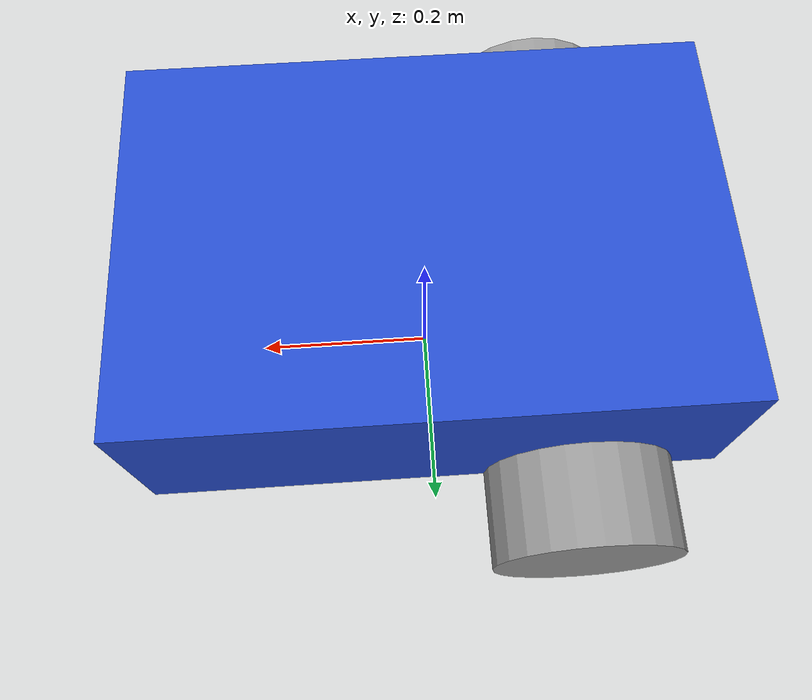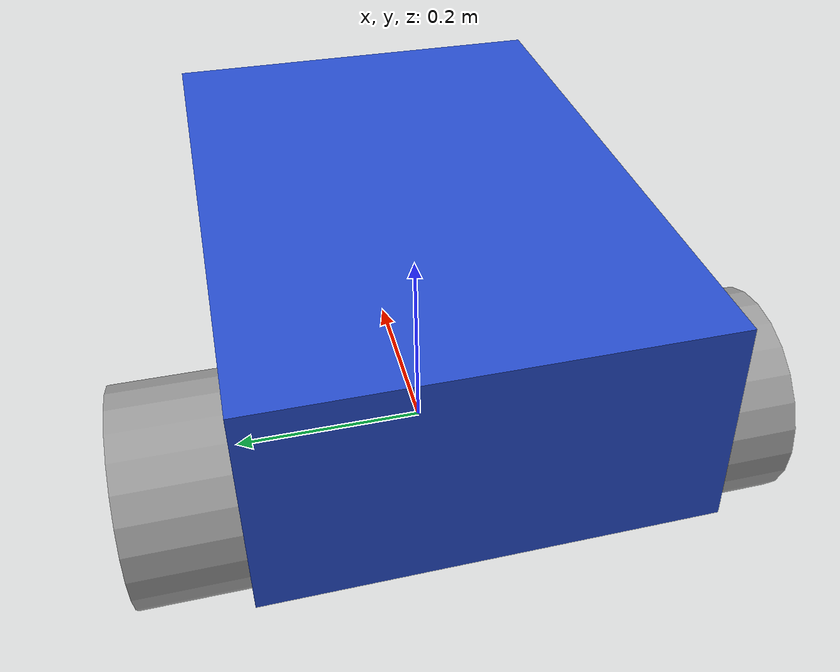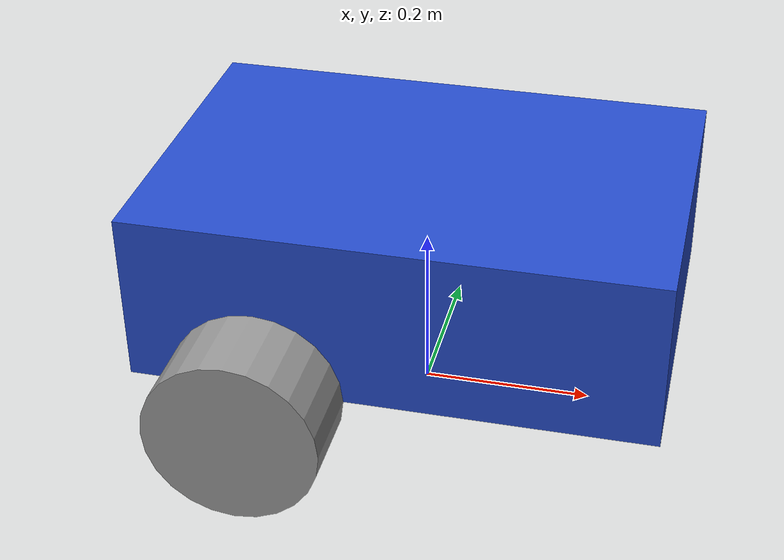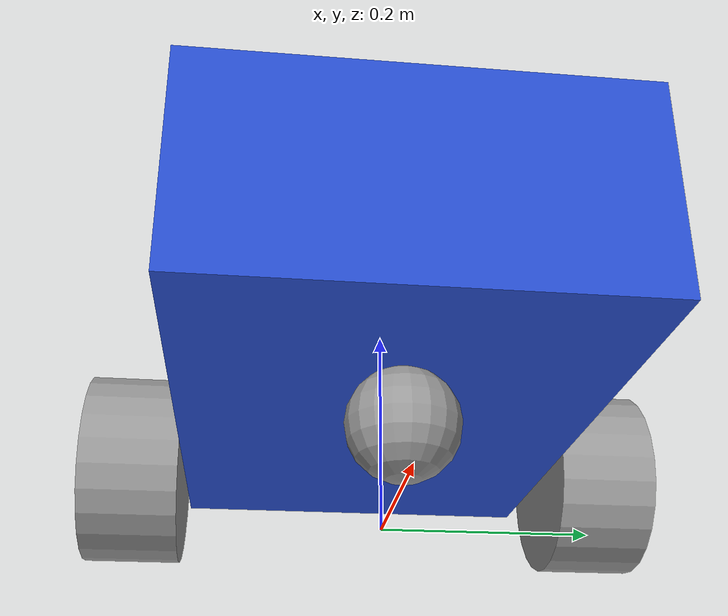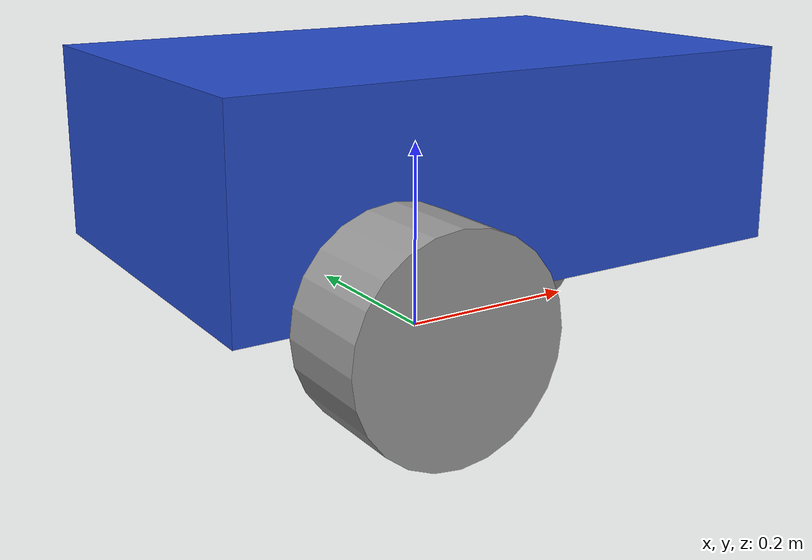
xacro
<?xml version="1.0"?>
<robot xmlns:xacro="http://www.ros.org/wiki/xacro">
    <xacro:property name="base_length" value="0.6"/>
    <xacro:property name="base_width" value="0.4" />
    <xacro:property name="base_height" value="0.2" />
    <xacro:property name="wheel_radius" value="0.1" />
    <xacro:property name="wheel_length" value="0.1" />

    <xacro:macro name="wheel_link" params="prefix">
        <link name="${prefix}_wheel_link">
            <visual>
                <geometry>
                    <cylinder radius="${wheel_radius}" length="${wheel_length}" />
                </geometry>
                <origin xyz="0 0 0" rpy="${pi/2.0} 0 0" />
                <material name="grey" />
            </visual>
        </link>
    </xacro:macro>

    <xacro:wheel_link prefix="right"/>
    <xacro:wheel_link prefix="left"/>

    <link name="base_link">
        <visual>
            <geometry>
                <box size="${base_length} ${base_width} ${base_height}" />
            </geometry>
            <origin xyz="0 0 0.1" rpy="0 0 0" />
            <material name="blue" />
        </visual>
    </link>

    <link name="caster_wheel_link">
        <visual>
            <geometry>
                <sphere radius="${ wheel_radius / 2.0 }"/>
            </geometry>
            <origin xyz="0 0 0" rpy="0 0 0" />
            <material name="grey" />
        </visual>
    </link>

    <link name="base_footprint">
    </link>

    <joint name="base_base_footprint" type="fixed">
        <parent link="base_footprint"/>
        <child link="base_link"/>
        <origin xyz="0 0 ${ wheel_radius }" rpy="0 0 0"/>
    </joint>

    <joint name="base_caster_wheel" type="continuous" >
        <parent link="base_link" />
        <child link="caster_wheel_link" />
        <origin xyz="${ base_length / 4.0 } 0 ${- wheel_radius / 2.0}" rpy="0 0 0"/>
        <axis xyz="0 1 0"/>
    </joint>

    <joint name="base_left_wheel" type="continuous" >
        <parent link="base_link"/>
        <child link="left_wheel_link"/>
        <origin xyz="${- base_length / 4.0 } ${base_width/2.0 + wheel_length/2.0} 0" rpy="0 0 0"/>
        <axis xyz="0 1 0" />
    </joint>

    <joint name="base_right_wheel" type="continuous" >
        <parent link="base_link"/>
        <child link="right_wheel_link"/>
        <origin xyz="${- base_length / 4.0 } ${ -base_width / 2.0 - wheel_length/2.0} 0" rpy="0 0 0"/>
        <axis xyz="0 1 0" />
    </joint>
</robot>
